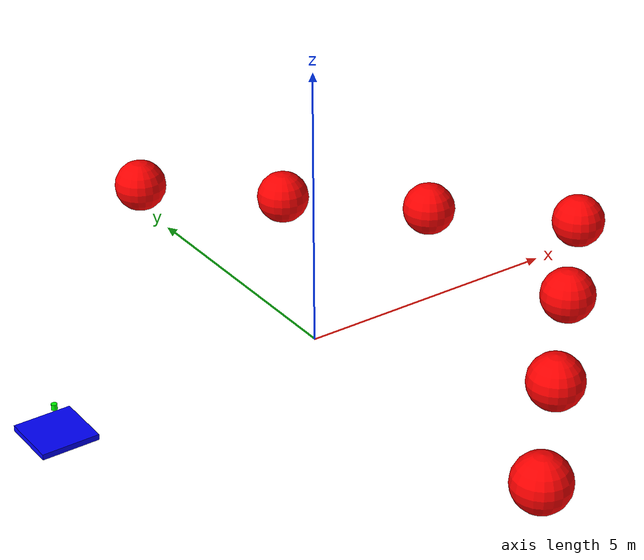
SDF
<?xml version="1.0" ?>
<sdf version="1.8">

    <!--
    To run the gazebo sim from the bridge
    gz sim -v 4 -r src/avoa3d/sdf/single_static.sdf
    -->

    <world name="3d_world">

        <physics name="1ms" type="ode">
            <max_step_size>0.001</max_step_size>
            <real_time_factor>1.0</real_time_factor>
            <real_time_update_rate>1000.0</real_time_update_rate>
        </physics>
        <gravity>0 0 0</gravity> <!-- World-level gravity disabled -->

        <plugin
            filename="gz-sim-physics-system"
            name="gz::sim::v8::systems::Physics">
        </plugin>
        <plugin
            filename="libignition-gazebo-user-commands-system.so"
            name="ignition::gazebo::systems::UserCommands">
        </plugin>
        <plugin
            filename="gz-sim-scene-broadcaster-system"
            name="gz::sim::systems::SceneBroadcaster">
        </plugin>
        <!-- Added Sensors system plugin -->
        <plugin
            filename="gz-sim-sensors-system"
            name="gz::sim::systems::Sensors">
            <render_engine>ogre2</render_engine>
        </plugin>

        <light type="directional" name="sun">
            <cast_shadows>true</cast_shadows>
            <pose>0 0 10 0 0 0</pose>
            <diffuse>0.8 0.8 0.8 1</diffuse>
            <specular>0.2 0.2 0.2 1</specular>
            <attenuation>
                <range>1000</range>
                <constant>0.9</constant>
                <linear>0.01</linear>
                <quadratic>0.001</quadratic>
            </attenuation>
            <direction>-0.5 0.1 -0.9</direction>
        </light>

        <!--!AGENTE -->
        <model name='agente' canonical_link='chassis'>
            <pose relative_to='world'>-5.0 0 0.0 0 0 0</pose> <!-- Changed z-position to 0.0 -->
            <link name='chassis'>
                <pose relative_to='__model__'>0.0 0 0.0 0 0 0</pose> <!-- Match the dynamic file positioning -->
                <inertial>
                    <mass>1.14395</mass>
                    <inertia>
                        <ixx>0.095329</ixx>
                        <ixy>0</ixy>
                        <ixz>0</ixz>
                        <iyy>0.381317</iyy>
                        <iyz>0</iyz>
                        <izz>0.476646</izz>
                    </inertia>
                </inertial>
                <visual name='visual'>
                    <geometry>
                        <box>
                            <size>1.0 1.0 0.1</size> <!-- Changed height to 0.1 for flatter chassis -->
                        </box>
                    </geometry>
                    <material>
                        <ambient>0.0 0.0 1.0 1</ambient>
                        <diffuse>0.0 0.0 1.0 1</diffuse>
                        <specular>0.0 0.0 1.0 1</specular>
                    </material>
                </visual>
                <collision name='collision'>
                    <geometry>
                        <box>
                            <size>1.0 1.0 1.0</size>
                        </box>
                    </geometry>
                </collision>
                <enable_gravity>false</enable_gravity>
            </link>

            <!-- Added LiDAR link -->
            <link name='lidar_link'>
                <pose relative_to='chassis'>0.0 0 0.5 0 0 0</pose>
                <inertial>
                    <mass>0.1</mass>
                    <inertia>
                        <ixx>0.000166667</ixx>
                        <iyy>0.000166667</iyy>
                        <izz>0.000166667</izz>
                    </inertia>
                </inertial>
                <collision name='collision'>
                    <geometry>
                        <cylinder>
                            <radius>0.05</radius>
                            <length>0.1</length>
                        </cylinder>
                    </geometry>
                </collision>
                <visual name='visual'>
                    <geometry>
                        <cylinder>
                            <radius>0.05</radius>
                            <length>0.1</length>
                        </cylinder>
                    </geometry>
                    <material>
                        <ambient>0.0 1.0 0.0 1</ambient>
                        <diffuse>0.0 1.0 0.0 1</diffuse>
                        <specular>0.0 1.0 0.0 1</specular>
                    </material>
                </visual>
                <sensor name="lidar" type="gpu_lidar">
                    <topic>scan</topic>
                    <update_rate>10</update_rate>
                    <lidar>
                        <scan>
                            <horizontal>
                                <samples>5000</samples>
                                <resolution>1</resolution>
                                <min_angle>-3.14159</min_angle>
                                <max_angle>3.14159</max_angle>
                            </horizontal>
                        </scan>
                        <range>
                            <min>0.1</min>
                            <max>10.0</max>
                            <resolution>0.01</resolution>
                        </range>
                    </lidar>
                    <visualize>true</visualize>
                    <always_on>true</always_on>
                    <update_rate>10</update_rate>
                    <pose_frame>lidar</pose_frame>
                </sensor>
                <enable_gravity>false</enable_gravity>
            </link>

            <!-- Added joint to connect LiDAR to chassis -->
            <joint name="lidar_joint" type="fixed">
                <parent>chassis</parent>
                <child>lidar_link</child>
            </joint>

            <!-- plugin to publish-->
            <plugin
                filename="ignition-gazebo-joint-state-publisher-system"
                name="ignition::gazebo::systems::JointStatePublisher">
            </plugin>

            <plugin
                filename="ignition-gazebo-odometry-publisher-system"
                name="ignition::gazebo::systems::OdometryPublisher">
                <dimensions>3</dimensions>
            </plugin>

            <plugin
                filename="ignition-gazebo-velocity-control-system"
                name="ignition::gazebo::systems::VelocityControl">
                <initial_linear>0.0 0 0</initial_linear>
                <initial_angular>0 0 0.0</initial_angular>
            </plugin>

            <plugin
                filename="libignition-gazebo-pose-publisher-system.so"
                name="ignition::gazebo::systems::PosePublisher">
                <topic>/agente/pose</topic>
                <frame_id>agente</frame_id>
                <update_rate>30</update_rate>
            </plugin>
        </model>

        <!-- !OBSTACULO 1 -->
        <model name='obstacle_1' canonical_link='obstacle'>
            <static>true</static>
            <pose relative_to='world'>0.0 -6.0 0.5 0 0 0</pose>
            <link name='obstacle'>
                <pose relative_to='__model__'>0.0 0 0.0 0 0 0</pose>
                <visual name='visual'>
                    <geometry>
                        <sphere>
                            <radius>0.5</radius>
                        </sphere>
                    </geometry>
                    <material>
                        <ambient>1.0 0.0 0.0 1</ambient>
                        <diffuse>1.0 0.0 0.0 1</diffuse>
                        <specular>1.0 0.0 0.0 1</specular>
                    </material>
                </visual>
                <collision name='collision'>
                    <geometry>
                        <sphere>
                            <radius>0.5</radius>
                        </sphere>
                    </geometry>
                </collision>
                <enable_gravity>false</enable_gravity>
            </link>

            <plugin
                filename="ignition-gazebo-velocity-control-system"
                name="ignition::gazebo::systems::VelocityControl">
                <initial_linear>0.0 0 0</initial_linear>
                <initial_angular>0 0 0.0</initial_angular>
            </plugin>

            <plugin
                filename="ignition-gazebo-odometry-publisher-system"
                name="ignition::gazebo::systems::OdometryPublisher">
                <dimensions>3</dimensions>
            </plugin>
        </model>

        <!-- !OBSTACULO 2 -->
        <model name='obstacle_2' canonical_link='obstacle'>
            <static>true</static>
            <pose relative_to='world'>2.0 -4.0 0.5 0 0 0</pose>
            <link name='obstacle'>
                <pose relative_to='__model__'>0.0 0 0.0 0 0 0</pose>
                <visual name='visual'>
                    <geometry>
                        <sphere>
                            <radius>0.5</radius>
                        </sphere>
                    </geometry>
                    <material>
                        <ambient>1.0 0.0 0.0 1</ambient>
                        <diffuse>1.0 0.0 0.0 1</diffuse>
                        <specular>1.0 0.0 0.0 1</specular>
                    </material>
                </visual>
                <collision name='collision'>
                    <geometry>
                        <sphere>
                            <radius>0.5</radius>
                        </sphere>
                    </geometry>
                </collision>
                <enable_gravity>false</enable_gravity>
            </link>

            <plugin
                filename="ignition-gazebo-velocity-control-system"
                name="ignition::gazebo::systems::VelocityControl">
                <initial_linear>0.0 0 0</initial_linear>
                <initial_angular>0 0 0.0</initial_angular>
            </plugin>

            <plugin
                filename="ignition-gazebo-odometry-publisher-system"
                name="ignition::gazebo::systems::OdometryPublisher">
                <dimensions>3</dimensions>
            </plugin>
        </model>

        <!-- !OBSTACULO 3 -->
        <model name='obstacle_3' canonical_link='obstacle'>
            <static>true</static>
            <pose relative_to='world'>4.0 -2.0 0.5 0 0 0</pose>
            <link name='obstacle'>
                <pose relative_to='__model__'>0.0 0 0.0 0 0 0</pose>
                <visual name='visual'>
                    <geometry>
                        <sphere>
                            <radius>0.5</radius>
                        </sphere>
                    </geometry>
                    <material>
                        <ambient>1.0 0.0 0.0 1</ambient>
                        <diffuse>1.0 0.0 0.0 1</diffuse>
                        <specular>1.0 0.0 0.0 1</specular>
                    </material>
                </visual>
                <collision name='collision'>
                    <geometry>
                        <sphere>
                            <radius>0.5</radius>
                        </sphere>
                    </geometry>
                </collision>
                <enable_gravity>false</enable_gravity>
            </link>

            <plugin
                filename="ignition-gazebo-velocity-control-system"
                name="ignition::gazebo::systems::VelocityControl">
                <initial_linear>0.0 0 0</initial_linear>
                <initial_angular>0 0 0.0</initial_angular>
            </plugin>

            <plugin
                filename="ignition-gazebo-odometry-publisher-system"
                name="ignition::gazebo::systems::OdometryPublisher">
                <dimensions>3</dimensions>
            </plugin>
        </model>

        <!-- !OBSTACULO 4 -->
        <model name='obstacle_4' canonical_link='obstacle'>
            <static>true</static>
            <pose relative_to='world'>6.0 0.0 0.5 0 0 0</pose>
            <link name='obstacle'>
                <pose relative_to='__model__'>0.0 0 0.0 0 0 0</pose>
                <visual name='visual'>
                    <geometry>
                        <sphere>
                            <radius>0.5</radius>
                        </sphere>
                    </geometry>
                    <material>
                        <ambient>1.0 0.0 0.0 1</ambient>
                        <diffuse>1.0 0.0 0.0 1</diffuse>
                        <specular>1.0 0.0 0.0 1</specular>
                    </material>
                </visual>
                <collision name='collision'>
                    <geometry>
                        <sphere>
                            <radius>0.5</radius>
                        </sphere>
                    </geometry>
                </collision>
                <enable_gravity>false</enable_gravity>
            </link>

            <plugin
                filename="ignition-gazebo-velocity-control-system"
                name="ignition::gazebo::systems::VelocityControl">
                <initial_linear>0.0 0 0</initial_linear>
                <initial_angular>0 0 0.0</initial_angular>
            </plugin>

            <plugin
                filename="ignition-gazebo-odometry-publisher-system"
                name="ignition::gazebo::systems::OdometryPublisher">
                <dimensions>3</dimensions>
            </plugin>
        </model>

        <!-- !OBSTACULO 5 -->
        <model name='obstacle_5' canonical_link='obstacle'>
            <static>true</static>
            <pose relative_to='world'>4.0 2.0 0.5 0 0 0</pose>
            <link name='obstacle'>
                <pose relative_to='__model__'>0.0 0 0.0 0 0 0</pose>
                <visual name='visual'>
                    <geometry>
                        <sphere>
                            <radius>0.5</radius>
                        </sphere>
                    </geometry>
                    <material>
                        <ambient>1.0 0.0 0.0 1</ambient>
                        <diffuse>1.0 0.0 0.0 1</diffuse>
                        <specular>1.0 0.0 0.0 1</specular>
                    </material>
                </visual>
                <collision name='collision'>
                    <geometry>
                        <sphere>
                            <radius>0.5</radius>
                        </sphere>
                    </geometry>
                </collision>
                <enable_gravity>false</enable_gravity>
            </link>

            <plugin
                filename="ignition-gazebo-velocity-control-system"
                name="ignition::gazebo::systems::VelocityControl">
                <initial_linear>0.0 0 0</initial_linear>
                <initial_angular>0 0 0.0</initial_angular>
            </plugin>

            <plugin
                filename="ignition-gazebo-odometry-publisher-system"
                name="ignition::gazebo::systems::OdometryPublisher">
                <dimensions>3</dimensions>
            </plugin>
        </model>

                <!-- !OBSTACULO 6 -->
        <model name='obstacle_6' canonical_link='obstacle'>
            <static>true</static>
            <pose relative_to='world'>2.0 4.0 0.5 0 0 0</pose>
            <link name='obstacle'>
                <pose relative_to='__model__'>0.0 0 0.0 0 0 0</pose>
                <visual name='visual'>
                    <geometry>
                        <sphere>
                            <radius>0.5</radius>
                        </sphere>
                    </geometry>
                    <material>
                        <ambient>1.0 0.0 0.0 1</ambient>
                        <diffuse>1.0 0.0 0.0 1</diffuse>
                        <specular>1.0 0.0 0.0 1</specular>
                    </material>
                </visual>
                <collision name='collision'>
                    <geometry>
                        <sphere>
                            <radius>0.5</radius>
                        </sphere>
                    </geometry>
                </collision>
                <enable_gravity>false</enable_gravity>
            </link>

            <plugin
                filename="ignition-gazebo-velocity-control-system"
                name="ignition::gazebo::systems::VelocityControl">
                <initial_linear>0.0 0 0</initial_linear>
                <initial_angular>0 0 0.0</initial_angular>
            </plugin>

            <plugin
                filename="ignition-gazebo-odometry-publisher-system"
                name="ignition::gazebo::systems::OdometryPublisher">
                <dimensions>3</dimensions>
            </plugin>
        </model>

        <!-- !OBSTACULO 7 -->
        <model name='obstacle_7' canonical_link='obstacle'>
            <static>true</static>
            <pose relative_to='world'>0.0 6.0 0.5 0 0 0</pose>
            <link name='obstacle'>
                <pose relative_to='__model__'>0.0 0 0.0 0 0 0</pose>
                <visual name='visual'>
                    <geometry>
                        <sphere>
                            <radius>0.5</radius>
                        </sphere>
                    </geometry>
                    <material>
                        <ambient>1.0 0.0 0.0 1</ambient>
                        <diffuse>1.0 0.0 0.0 1</diffuse>
                        <specular>1.0 0.0 0.0 1</specular>
                    </material>
                </visual>
                <collision name='collision'>
                    <geometry>
                        <sphere>
                            <radius>0.5</radius>
                        </sphere>
                    </geometry>
                </collision>
                <enable_gravity>false</enable_gravity>
            </link>

            <plugin
                filename="ignition-gazebo-velocity-control-system"
                name="ignition::gazebo::systems::VelocityControl">
                <initial_linear>0.0 0 0</initial_linear>
                <initial_angular>0 0 0.0</initial_angular>
            </plugin>

            <plugin
                filename="ignition-gazebo-odometry-publisher-system"
                name="ignition::gazebo::systems::OdometryPublisher">
                <dimensions>3</dimensions>
            </plugin>
        </model>

    </world>
</sdf>
